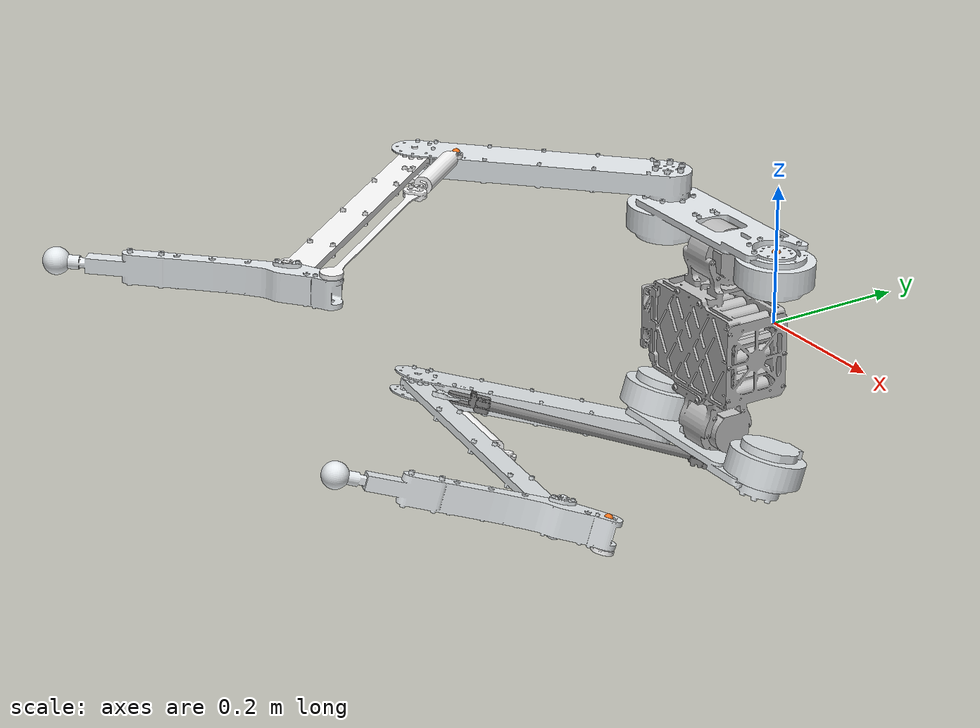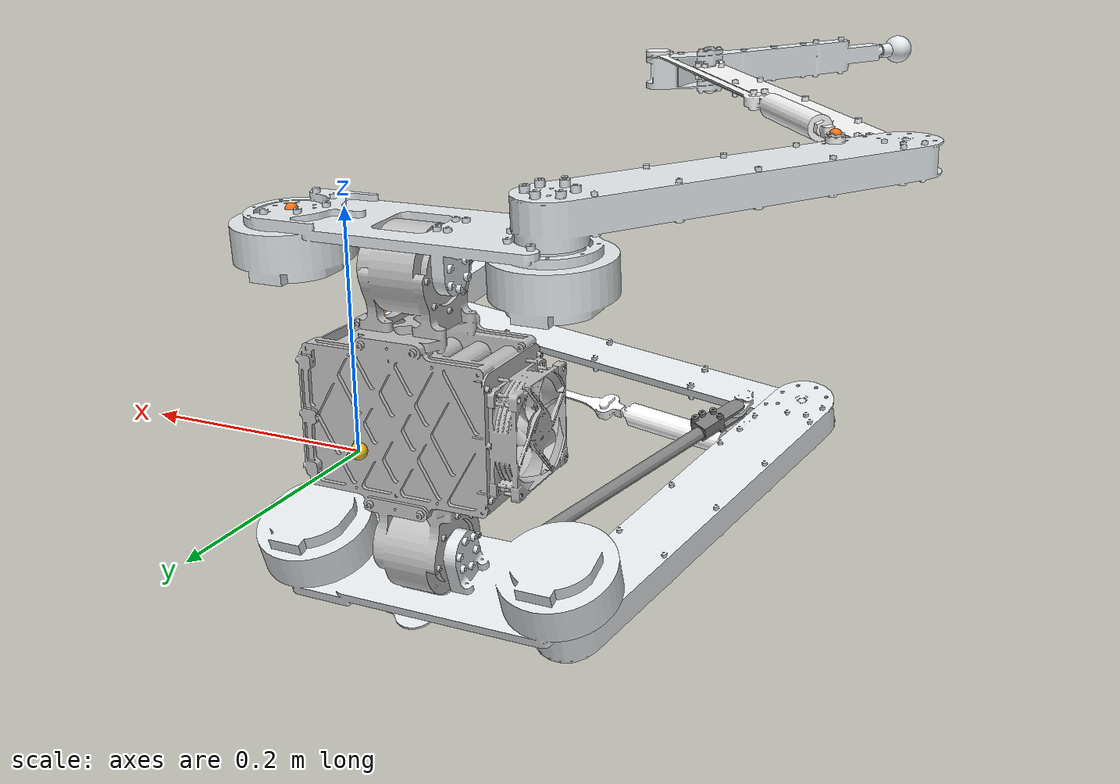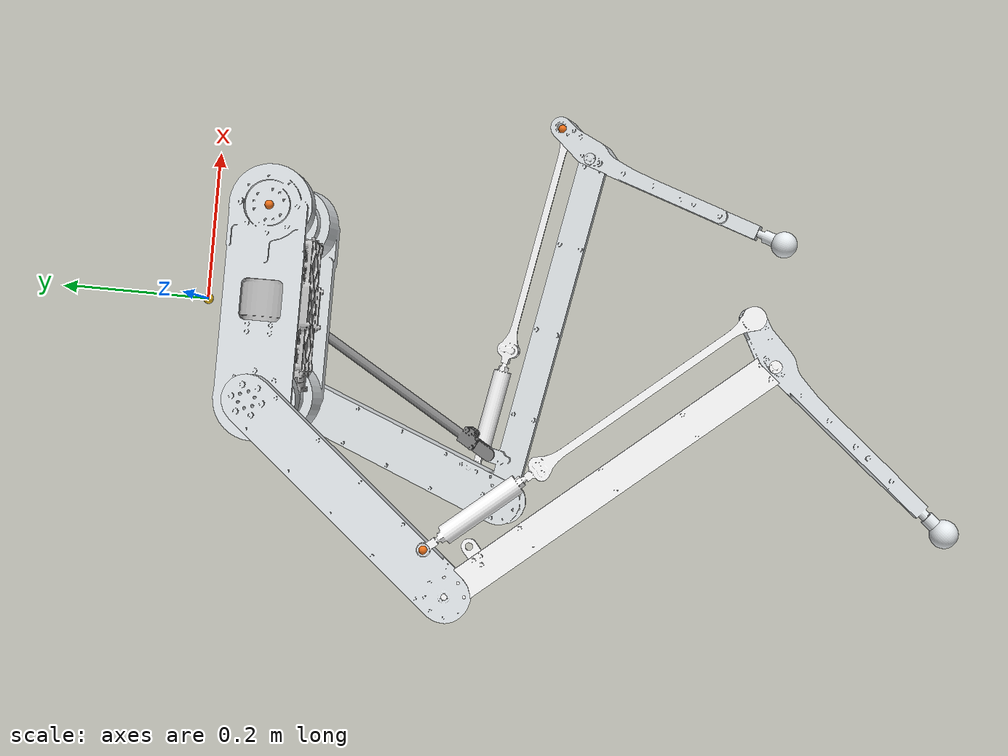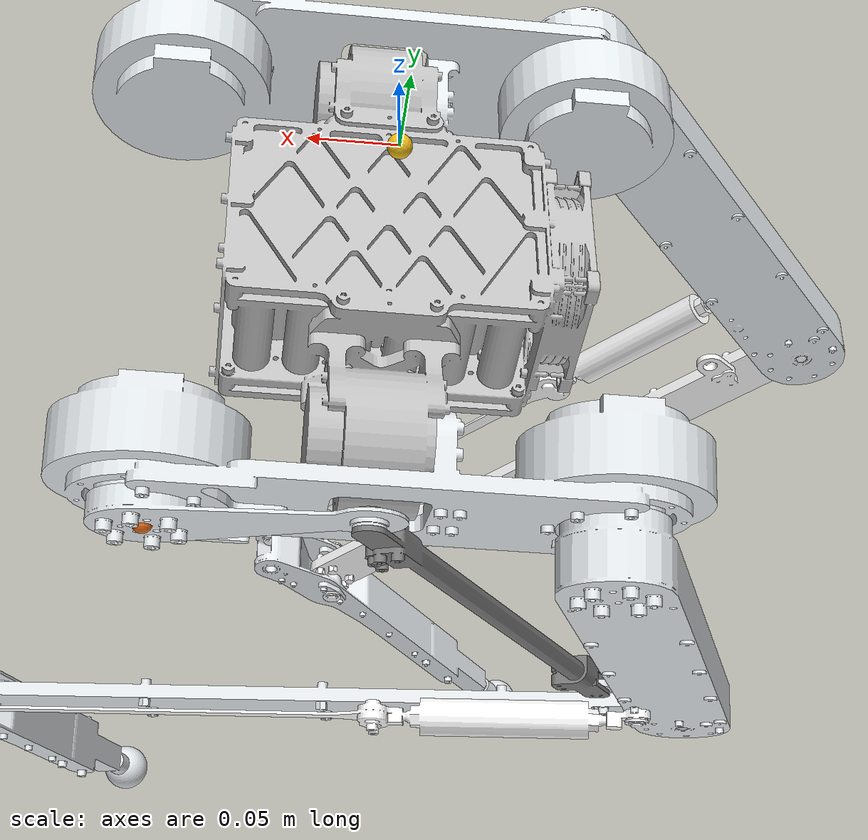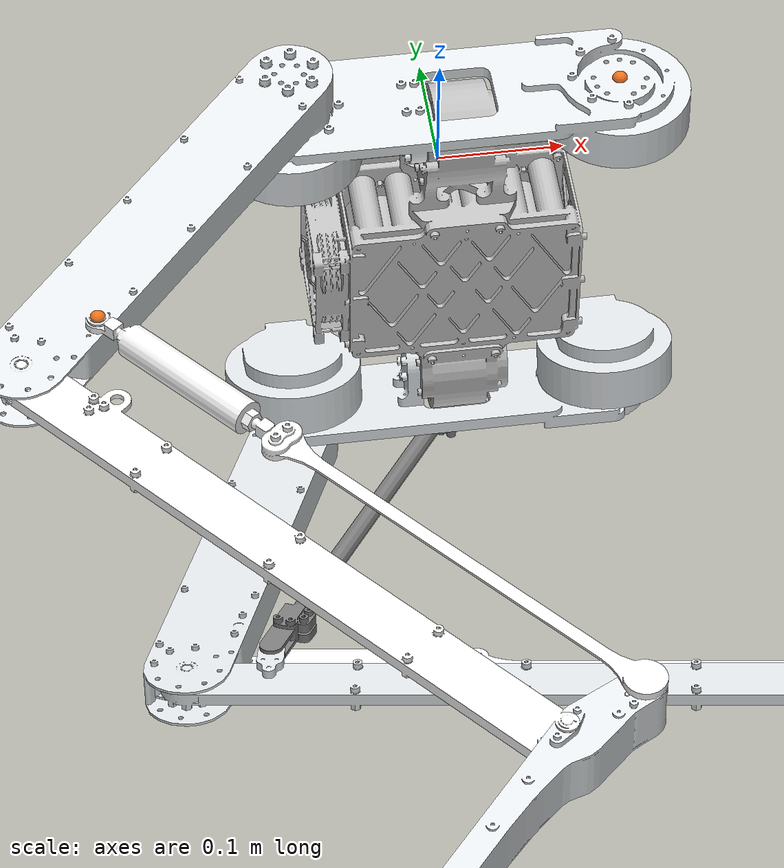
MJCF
<?xml version="1.0" encoding="utf-8"?>
<mujoco model="running_robot_debug">
  <compiler angle="radian" coordinate="local" autolimits="true" inertiafromgeom="false" fusestatic="false" meshdir="../robotURDF/meshes"/>
  <option gravity="0 0 0" integrator="Euler" solver="Newton" iterations="50" tolerance="1e-10"/>
  <statistic meansize="0.25" extent="1.25" center="0 0 0"/>
  <visual>
    <global azimuth="135" elevation="-25" fovy="45" offwidth="1600" offheight="1200"/>
    <quality shadowsize="2048" offsamples="4"/>
    <headlight ambient="0.25 0.25 0.25" diffuse="0.6 0.6 0.6" specular="0.2 0.2 0.2"/>
    <rgba joint="0.2 0.6 0.9 1" com="0.9 0.9 0.9 1" inertia="0.8 0.2 0.2 0.45" constraint="0.9 0 0 1"/>
  </visual>
  <default>
    <geom rgba="0.7 0.7 0.7 1" contype="0" conaffinity="0"/>
  </default>
  <asset>
    <mesh name="main_body_mesh" file="Main Body.STL"/>
    <mesh name="hip_right_mesh" file="Hip Right.STL"/>
    <mesh name="four_bar_beam_right_mesh" file="Four Bar Beam Right.STL"/>
    <mesh name="four_bar_link_right_mesh" file="Four Bar Link Right.STL"/>
    <mesh name="femur_right_mesh" file="Femur Right.STL"/>
    <mesh name="shin_right_mesh" file="Shin Right.STL"/>
    <mesh name="foot_right_mesh" file="Foot Right.STL"/>
    <mesh name="achilles_tendon_right_mesh" file="Achilles Tendon Right.STL"/>
    <mesh name="hip_left_mesh" file="Hip Left.STL"/>
    <mesh name="femur_left_mesh" file="Femur Left.STL"/>
    <mesh name="shin_left_mesh" file="Shin Left.STL"/>
    <mesh name="foot_left_mesh" file="Foot Left.STL"/>
    <mesh name="achilles_tendon_left_mesh" file="Achilles Tendon Left.STL"/>
  </asset>
  <equality>
    <connect name="hip_right_hip_joint_right_adduction_placeholder" active="false" site1="hip_right_parent_anchor" site2="hip_right_pivot_child" solref="0.02 1" solimp="0.9 0.95 0.001"/>
    <connect name="four_bar_beam_right_four_bar_hip_joint_placeholder" active="false" site1="four_bar_beam_right_parent_anchor" site2="four_bar_beam_right_pivot_child" solref="0.02 1" solimp="0.9 0.95 0.001"/>
    <connect name="four_bar_link_right_four_bar_pivot_right_placeholder" active="false" site1="four_bar_link_right_parent_anchor" site2="four_bar_link_right_pivot_child" solref="0.02 1" solimp="0.9 0.95 0.001"/>
    <connect name="femur_right_hip_joint_right_placeholder" active="false" site1="femur_right_parent_anchor" site2="femur_right_pivot_child" solref="0.02 1" solimp="0.9 0.95 0.001"/>
    <connect name="shin_right_knee_right_placeholder" active="false" site1="shin_right_parent_anchor" site2="shin_right_pivot_child" solref="0.02 1" solimp="0.9 0.95 0.001"/>
    <connect name="foot_right_ankle_right_placeholder" active="false" site1="foot_right_parent_anchor" site2="foot_right_pivot_child" solref="0.02 1" solimp="0.9 0.95 0.001"/>
    <connect name="achilles_tendon_right_achilles_pivot_right_placeholder" active="false" site1="achilles_tendon_right_parent_anchor" site2="achilles_tendon_right_pivot_child" solref="0.02 1" solimp="0.9 0.95 0.001"/>
    <connect name="hip_left_hip_joint_left_adduction_placeholder" active="false" site1="hip_left_parent_anchor" site2="hip_left_pivot_child" solref="0.02 1" solimp="0.9 0.95 0.001"/>
    <connect name="femur_left_hip_joint_left_placeholder" active="false" site1="femur_left_parent_anchor" site2="femur_left_pivot_child" solref="0.02 1" solimp="0.9 0.95 0.001"/>
    <connect name="shin_left_knee_left_placeholder" active="false" site1="shin_left_parent_anchor" site2="shin_left_pivot_child" solref="0.02 1" solimp="0.9 0.95 0.001"/>
    <connect name="foot_left_ankle_right_placeholder" active="false" site1="foot_left_parent_anchor" site2="foot_left_pivot_child" solref="0.02 1" solimp="0.9 0.95 0.001"/>
    <connect name="achilles_tendon_left_achilles_pivot_left_placeholder" active="false" site1="achilles_tendon_left_parent_anchor" site2="achilles_tendon_left_pivot_child" solref="0.02 1" solimp="0.9 0.95 0.001"/>
  </equality>
  <actuator>
    <motor name="femur_right_hip" joint="femur_right_hip_joint_right" gear="1" ctrllimited="true" ctrlrange="-1 1"/>
    <motor name="femur_left_hip" joint="femur_left_hip_joint_left" gear="1" ctrllimited="true" ctrlrange="-1 1"/>
    <motor name="hip_right_adduction" joint="hip_right_hip_joint_right_adduction" gear="1" ctrllimited="true" ctrlrange="-1 1"/>
    <motor name="hip_left_adduction" joint="hip_left_hip_joint_left_adduction" gear="1" ctrllimited="true" ctrlrange="-1 1"/>
    <motor name="right_hip_abduction" joint="four_bar_beam_right_four_bar_hip_joint" gear="1" ctrllimited="true" ctrlrange="-1 1"/>
  </actuator>
  <worldbody>
    <body name="main_body">
      <freejoint name="main_body_root_freejoint"/>
      <site name="main_body_frame" pos="0 0 0" size="0.007" rgba="0.95 0.75 0.1 1"/>
      <inertial pos="-0.00103355831047746 -5.85934555886878e-07 0.095898315980789" mass="3.83790046512082" fullinertia="0.00293557255778769 0.00321803531509905 0.00348676153224273 -1.41459085135855e-07 6.29875730526683e-08 -3.4241970232236e-08"/>
      <geom name="main_body_geom" type="mesh" mesh="main_body_mesh" pos="0 0 0" quat="1 0 0 0" rgba="0.752941176470588 0.752941176470588 0.752941176470588 1" contype="0" conaffinity="0" group="1"/>
      <site name="hip_right_parent_anchor" pos="0.12179 -0.10812 -0.16534" quat="-5.80117751031107e-07 3.62710616417412e-06 -0.987449941427197 0.157932305631031" size="0.006" rgba="0.95 0.45 0.1 1"/>
      <site name="hip_left_parent_anchor" pos="0.121794924630579 -0.0938366694238008 0.167247868377338" quat="1.6150087289001e-15 4.16062201487312e-17 0.0257536813327136 0.999668318942745" size="0.006" rgba="0.95 0.45 0.1 1"/>
      <body name="hip_right" pos="0.12179 -0.10812 -0.16534" quat="-5.80117751031107e-07 3.62710616417412e-06 -0.987449941427197 0.157932305631031">
        <joint name="hip_right_hip_joint_right_adduction" type="hinge" axis="0 0 1" limited="true" range="-1.5707963267949 1.5707963267949"/>
        <site name="hip_right_pivot_child" pos="0 0 0" size="0.006" rgba="0.15 0.65 0.95 1"/>
        <inertial pos="0.127254632212811 0.000149488360941571 -0.0202957404054771" mass="1.35740771972829" fullinertia="0.0011046805012951 0.0026882993281322 0.00358481924686636 -1.17567400584849e-12 3.52851108220559e-05 -1.78555184960488e-12"/>
        <geom name="hip_right_geom" type="mesh" mesh="hip_right_mesh" pos="0 0 0" quat="1 0 0 0" rgba="0.898039215686275 0.917647058823529 0.929411764705882 1" contype="0" conaffinity="0" group="1"/>
        <site name="four_bar_beam_right_parent_anchor" pos="0 0 0.0125999999782441" quat="2.19256010172096e-16 -0.135716472106072 0.990747717231325 -1.60059709920454e-15" size="0.006" rgba="0.95 0.45 0.1 1"/>
        <site name="femur_right_parent_anchor" pos="0.249999999630666 0 -0.00480000000676006" quat="0.0861369522217297 0 0 0.996283305823174" size="0.006" rgba="0.95 0.45 0.1 1"/>
        <body name="four_bar_beam_right" pos="0 0 0.0125999999782441" quat="2.19256010172096e-16 -0.135716472106072 0.990747717231325 -1.60059709920454e-15">
          <joint name="four_bar_beam_right_four_bar_hip_joint" type="hinge" axis="0 0 1" limited="true" range="-1.5707963267949 1.5707963267949"/>
          <site name="four_bar_beam_right_pivot_child" pos="0 0 0" size="0.006" rgba="0.15 0.65 0.95 1"/>
          <inertial pos="-0.011019175519832 -1.24659178299402e-07 0.00347757297699097" mass="0.142630655141381" fullinertia="2.65319868645238e-05 7.85996063730645e-05 9.98768507971965e-05 -8.01849796892294e-11 1.55377606261961e-17 -1.68085218053143e-17"/>
          <geom name="four_bar_beam_right_geom" type="mesh" mesh="four_bar_beam_right_mesh" pos="0 0 0" quat="1 0 0 0" rgba="0.898039215686275 0.917647058823529 0.929411764705882 1" contype="0" conaffinity="0" group="1"/>
          <site name="four_bar_link_right_parent_anchor" pos="-0.127050006683462 -0.0291598597804043 -0.00250000000597414" quat="0.0448198439417132 -0.918990442000438 0.109514940016624 0.376104010898629" size="0.006" rgba="0.95 0.45 0.1 1"/>
          <body name="four_bar_link_right" pos="-0.127050006683462 -0.0291598597804043 -0.00250000000597414" quat="0.0448198439417132 -0.918990442000438 0.109514940016624 0.376104010898629">
            <joint name="four_bar_link_right_four_bar_pivot_right" type="hinge" axis="0 0 1" limited="true" range="-1.5707963267949 1.5707963267949"/>
            <site name="four_bar_link_right_pivot_child" pos="0 0 0" size="0.006" rgba="0.15 0.65 0.95 1"/>
            <inertial pos="0.00168951988732721 0.164499999692325 -0.00166112315882333" mass="0.109514776037964" fullinertia="0.000224121622750797 5.85117780931328e-06 0.000224131598510378 5.05229856696951e-07 2.9424952703396e-07 5.13872320557526e-07"/>
            <geom name="four_bar_link_right_geom" type="mesh" mesh="four_bar_link_right_mesh" pos="0 0 0" quat="1 0 0 0" rgba="0.498039215686275 0.498039215686275 0.498039215686275 1" contype="0" conaffinity="0" group="1"/>
          </body>
        </body>
        <body name="femur_right" pos="0.249999999630666 0 -0.00480000000676006" quat="0.0861369522217297 0 0 0.996283305823174">
          <joint name="femur_right_hip_joint_right" type="hinge" axis="0 0 1" limited="true" range="-1.5707963267949 1.5707963267949"/>
          <site name="femur_right_pivot_child" pos="0 0 0" size="0.006" rgba="0.15 0.65 0.95 1"/>
          <inertial pos="-0.057068986739219 0.0989281192242479 0.0245054709378571" mass="0.841171867100181" fullinertia="0.00396847721845167 0.0016220940522616 0.00550143980148414 0.00213805178398913 1.55175080684272e-14 -2.74324291581196e-14"/>
          <geom name="femur_right_geom" type="mesh" mesh="femur_right_mesh" pos="0 0 0" quat="1 0 0 0" rgba="0.898039215686275 0.917647058823529 0.929411764705882 1" contype="0" conaffinity="0" group="1"/>
          <site name="shin_right_parent_anchor" pos="-0.175000008569798 0.303108885530675 0.026599999994807" quat="0.581168121538015 0.581168121539145 -0.402794754816437 -0.402794754815654" size="0.006" rgba="0.95 0.45 0.1 1"/>
          <site name="achilles_tendon_right_parent_anchor" pos="-0.123782385542232 0.26339736004743 0.0431000000127672" quat="1.08234134131436e-11 -0.863690175558132 -0.504023095348183 6.31621209214334e-12" size="0.006" rgba="0.95 0.45 0.1 1"/>
          <body name="shin_right" pos="-0.175000008569798 0.303108885530675 0.026599999994807" quat="0.581168121538015 0.581168121539145 -0.402794754816437 -0.402794754815654">
            <joint name="shin_right_knee_right" type="hinge" axis="0 0 1" limited="true" range="-1.5707963267949 1.5707963267949"/>
            <site name="shin_right_pivot_child" pos="0 0 0" size="0.006" rgba="0.15 0.65 0.95 1"/>
            <inertial pos="0.000351968301704697 0.00023703952367618 -0.240166762432412" mass="0.45989184587505" fullinertia="0.00658385058161262 0.0066261606946727 5.30349027361131e-05 -1.46731746406004e-08 8.89465068409669e-07 1.29242241620587e-14"/>
            <geom name="shin_right_geom" type="mesh" mesh="shin_right_mesh" pos="0 0 0" quat="1 0 0 0" rgba="0.898039215686275 0.917647058823529 0.929411764705882 1" contype="0" conaffinity="0" group="1"/>
            <site name="foot_right_parent_anchor" pos="0.0519713537290222 -0.0174999999937875 -0.532050286670248" quat="0.487388986189015 6.89536760183362e-12 0.873184961014357 -2.30896002034623e-12" size="0.006" rgba="0.95 0.45 0.1 1"/>
            <body name="foot_right" pos="0.0519713537290222 -0.0174999999937875 -0.532050286670248" quat="0.487388986189015 6.89536760183362e-12 0.873184961014357 -2.30896002034623e-12">
              <joint name="foot_right_ankle_right" type="hinge" axis="0 0 1" limited="true" range="-1.5707963267949 1.5707963267949"/>
              <site name="foot_right_pivot_child" pos="0 0 0" size="0.006" rgba="0.15 0.65 0.95 1"/>
              <inertial pos="0.0433927710286527 0.017424286170362 -0.154652304991723" mass="0.498036623860506" fullinertia="0.000883686538349972 0.000946003759259067 0.000138874280195633 -6.56904543781811e-16 0.000248107457960729 2.206752914625e-15"/>
              <geom name="foot_right_geom" type="mesh" mesh="foot_right_mesh" pos="0 0 0" quat="1 0 0 0" rgba="0.898039215686275 0.917647058823529 0.929411764705882 1" contype="0" conaffinity="0" group="1"/>
            </body>
          </body>
          <body name="achilles_tendon_right" pos="-0.123782385542232 0.26339736004743 0.0431000000127672" quat="1.08234134131436e-11 -0.863690175558132 -0.504023095348183 6.31621209214334e-12">
            <joint name="achilles_tendon_right_achilles_pivot_right" type="hinge" axis="0 0 1" limited="true" range="-1.5707963267949 1.5707963267949"/>
            <site name="achilles_tendon_right_pivot_child" pos="0 0 0" size="0.006" rgba="0.15 0.65 0.95 1"/>
            <inertial pos="0.0915646152614171 0.0767829642441324 -0.0050734462019475" mass="0.30962539233588" fullinertia="0.000213362737482866 0.000290715107261993 0.000475045385310673 -0.000218506864286905 -9.27977790478318e-08 -8.12973199923377e-08"/>
            <geom name="achilles_tendon_right_geom" type="mesh" mesh="achilles_tendon_right_mesh" pos="0 0 0" quat="1 0 0 0" rgba="1 1 1 1" contype="0" conaffinity="0" group="1"/>
          </body>
        </body>
      </body>
      <body name="hip_left" pos="0.121794924630579 -0.0938366694238008 0.167247868377338" quat="1.6150087289001e-15 4.16062201487312e-17 0.0257536813327136 0.999668318942745">
        <joint name="hip_left_hip_joint_left_adduction" type="hinge" axis="0 0 1" limited="true" range="-1.5707963267949 1.5707963267949"/>
        <site name="hip_left_pivot_child" pos="0 0 0" size="0.006" rgba="0.15 0.65 0.95 1"/>
        <inertial pos="0.127254632121599 -0.000149488047743077 -0.0202957403988102" mass="1.35740771588615" fullinertia="0.00110468050069669 0.00268829932797972 0.0035848192464673 -1.20679753946943e-12 3.52851108379561e-05 -1.70863288253241e-12"/>
        <geom name="hip_left_geom" type="mesh" mesh="hip_left_mesh" pos="0 0 0" quat="1 0 0 0" rgba="0.898039215686275 0.917647058823529 0.929411764705882 1" contype="0" conaffinity="0" group="1"/>
        <site name="femur_left_parent_anchor" pos="0.249999999987394 0 -0.00480000002734837" quat="0.0832920165095542 0 0 0.996525182815654" size="0.006" rgba="0.95 0.45 0.1 1"/>
        <body name="femur_left" pos="0.249999999987394 0 -0.00480000002734837" quat="0.0832920165095542 0 0 0.996525182815654">
          <joint name="femur_left_hip_joint_left" type="hinge" axis="0 0 1" limited="true" range="-1.5707963267949 1.5707963267949"/>
          <site name="femur_left_pivot_child" pos="0 0 0" size="0.006" rgba="0.15 0.65 0.95 1"/>
          <inertial pos="-0.0563852408337139 -0.0975281538755867 0.0243581895610647" mass="0.845028163769262" fullinertia="0.0039686644146834 0.00162228105548006 0.00550146037446654 -0.00213805171958798 7.55475461919689e-16 -4.4930964331058e-15"/>
          <geom name="femur_left_geom" type="mesh" mesh="femur_left_mesh" pos="0 0 0" quat="1 0 0 0" rgba="0.898039215686275 0.917647058823529 0.929411764705882 1" contype="0" conaffinity="0" group="1"/>
          <site name="shin_left_parent_anchor" pos="0.0156501396439831 -0.464826312132183 0.0229000000135512" quat="0.938775947368906 0 0 -0.344528258117694" size="0.006" rgba="0.95 0.45 0.1 1"/>
          <site name="achilles_tendon_left_parent_anchor" pos="-0.123782377809959 -0.263397366937607 0.0480999998954914" quat="2.31555651385382e-10 -0.998163841787472 0.060571816450176 -1.40515472776489e-11" size="0.006" rgba="0.95 0.45 0.1 1"/>
          <body name="shin_left" pos="0.0156501396439831 -0.464826312132183 0.0229000000135512" quat="0.938775947368906 0 0 -0.344528258117694">
            <joint name="shin_left_knee_left" type="hinge" axis="0 0 1" limited="true" range="-1.5707963267949 1.5707963267949"/>
            <site name="shin_left_pivot_child" pos="0 0 0" size="0.006" rgba="0.15 0.65 0.95 1"/>
            <inertial pos="-0.0101137404936142 0.000349082459925154 0.00344014936558201" mass="0.459402062312658" fullinertia="5.3022580039485e-05 0.00658383839579555 0.00662613644880214 -8.89734559501902e-07 6.28886878596368e-13 -1.46731789344475e-08"/>
            <geom name="shin_left_geom" type="mesh" mesh="shin_left_mesh" pos="0 0 0" quat="1 0 0 0" rgba="1 1 1 1" contype="0" conaffinity="0" group="1"/>
            <site name="foot_left_parent_anchor" pos="0.262596767416777 0.059745827745814 0.0211999998653724" quat="0.703293681021569 -0.703293680978403 0.0733348366409871 -0.0733348366454881" size="0.006" rgba="0.95 0.45 0.1 1"/>
            <body name="foot_left" pos="0.262596767416777 0.059745827745814 0.0211999998653724" quat="0.703293681021569 -0.703293680978403 0.0733348366409871 -0.0733348366454881">
              <joint name="foot_left_ankle_right" type="hinge" axis="0 0 1" limited="true" range="-1.5707963267949 1.5707963267949"/>
              <site name="foot_left_pivot_child" pos="0 0 0" size="0.006" rgba="0.15 0.65 0.95 1"/>
              <inertial pos="0.0433981157265454 0.017372685298235 -0.154674688414417" mass="0.497957719619419" fullinertia="0.000883684161198164 0.000946005628113021 0.000138873873072778 -1.72664143651408e-09 0.000248106653071407 -7.05041956111119e-10"/>
              <geom name="foot_left_geom" type="mesh" mesh="foot_left_mesh" pos="0 0 0" quat="1 0 0 0" rgba="0.898039215686275 0.917647058823529 0.929411764705882 1" contype="0" conaffinity="0" group="1"/>
            </body>
          </body>
          <body name="achilles_tendon_left" pos="-0.123782377809959 -0.263397366937607 0.0480999998954914" quat="2.31555651385382e-10 -0.998163841787472 0.060571816450176 -1.40515472776489e-11">
            <joint name="achilles_tendon_left_achilles_pivot_left" type="hinge" axis="0 0 1" limited="true" range="-1.5707963267949 1.5707963267949"/>
            <site name="achilles_tendon_left_pivot_child" pos="0 0 0" size="0.006" rgba="0.15 0.65 0.95 1"/>
            <inertial pos="0.0998053974114031 0.0657157595764849 -7.58478739828483e-05" mass="0.309625411601379" fullinertia="0.000164340798125385 0.000339741032206026 0.000475041413986389 -0.000203839727739998 -1.23839633505047e-07 -8.02597230903611e-08"/>
            <geom name="achilles_tendon_left_geom" type="mesh" mesh="achilles_tendon_left_mesh" pos="0 0 0" quat="1 0 0 0" rgba="1 1 1 1" contype="0" conaffinity="0" group="1"/>
          </body>
        </body>
      </body>
    </body>
  </worldbody>
</mujoco>
